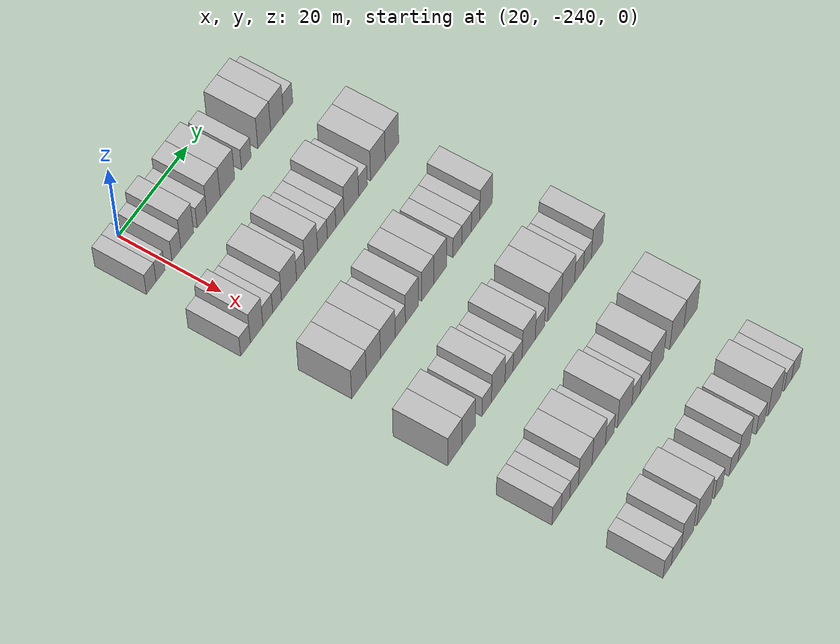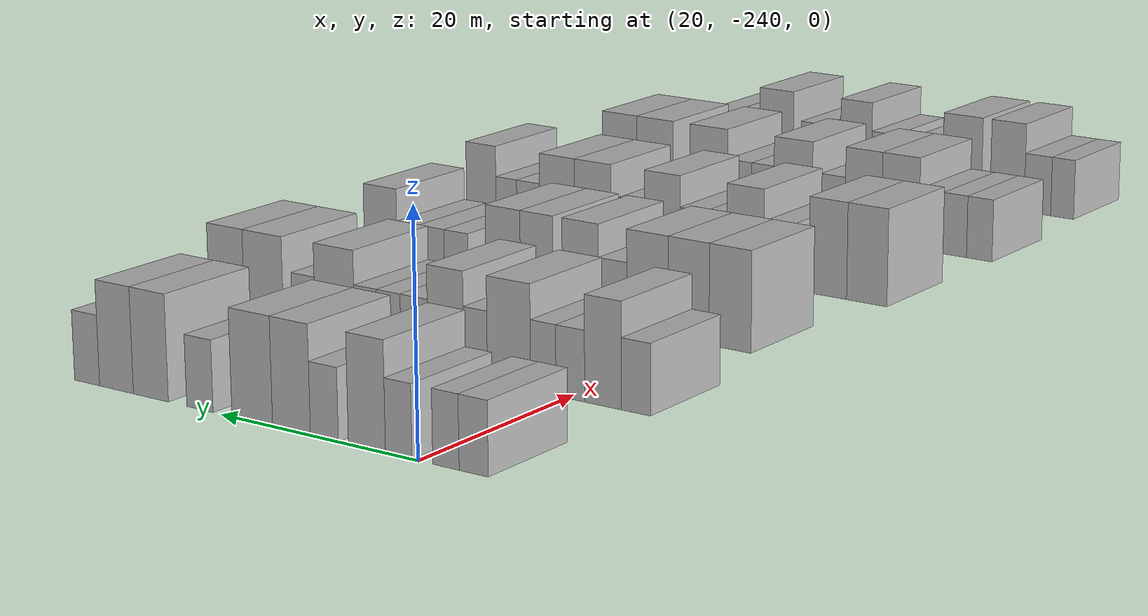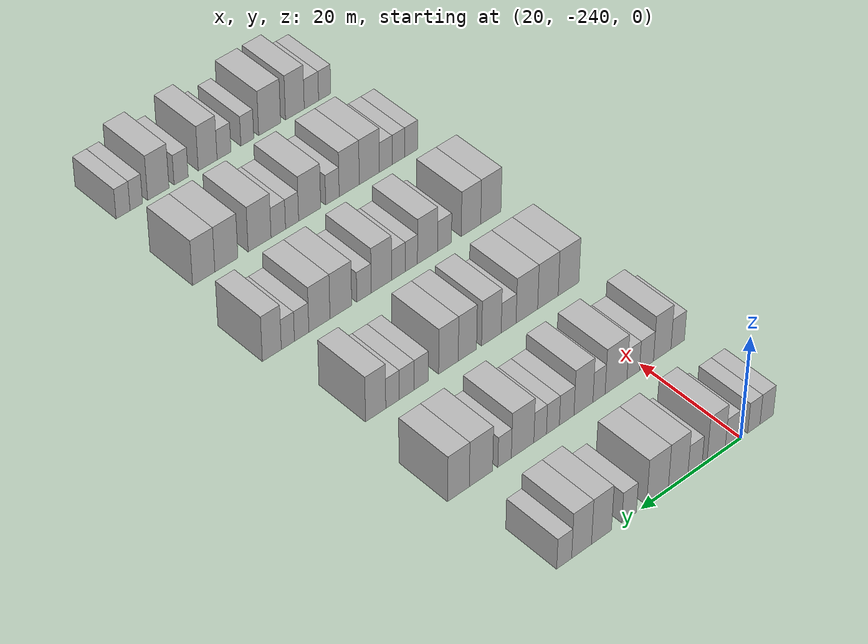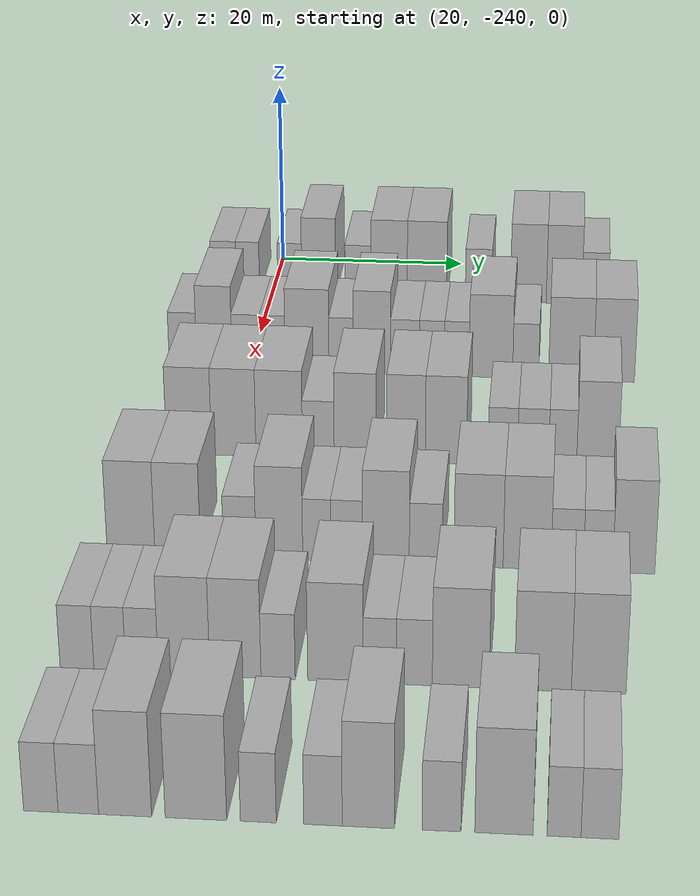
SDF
<sdf version="1.6">
 <world name="default">
  <model name="building_25">
   <static>1</static>
   <pose>25.0000 -245.2868 0 0.000000 0.000000 0.000000</pose>
   <link name="link">
    <pose>0 0 3.00 0 0 0</pose>
    <collision name="collision"><geometry><box><size>10.0000 2.7521 6.0000</size></box></geometry></collision>
    <visual name="visual">
     <cast_shadows>0</cast_shadows>
     <geometry><box><size>10.0000 2.7521 6.0000</size></box></geometry>
     <material>
      <script>
       <uri>model://HANNAS_wall/materials/scripts</uri>
       <uri>model://HANNAS_wall/materials/textures</uri>
       <name>vrc/HANNAS_wall</name>
      </script>
     </material>
    </visual>
   </link>
  </model>
  <model name="building_26">
   <static>1</static>
   <pose>25.0000 -242.6461 0 0.000000 0.000000 0.000000</pose>
   <link name="link">
    <pose>0 0 3.00 0 0 0</pose>
    <collision name="collision"><geometry><box><size>10.0000 2.5293 6.0000</size></box></geometry></collision>
    <visual name="visual">
     <cast_shadows>0</cast_shadows>
     <geometry><box><size>10.0000 2.5293 6.0000</size></box></geometry>
     <material>
      <script>
       <uri>model://HANNAS_wall/materials/scripts</uri>
       <uri>model://HANNAS_wall/materials/textures</uri>
       <name>vrc/HANNAS_wall</name>
      </script>
     </material>
    </visual>
   </link>
  </model>
  <model name="building_27">
   <static>1</static>
   <pose>25.0000 -238.0825 0 0.000000 0.000000 0.000000</pose>
   <link name="link">
    <pose>0 0 3.00 0 0 0</pose>
    <collision name="collision"><geometry><box><size>10.0000 2.5979 6.0000</size></box></geometry></collision>
    <visual name="visual">
     <cast_shadows>0</cast_shadows>
     <geometry><box><size>10.0000 2.5979 6.0000</size></box></geometry>
     <material>
      <script>
       <uri>model://HANNAS_wall/materials/scripts</uri>
       <uri>model://HANNAS_wall/materials/textures</uri>
       <name>vrc/HANNAS_wall</name>
      </script>
     </material>
    </visual>
   </link>
  </model>
  <model name="building_28">
   <static>1</static>
   <pose>25.0000 -234.9409 0 0.000000 0.000000 0.000000</pose>
   <link name="link">
    <pose>0 0 4.50 0 0 0</pose>
    <collision name="collision"><geometry><box><size>10.0000 3.6854 9.0000</size></box></geometry></collision>
    <visual name="visual">
     <cast_shadows>0</cast_shadows>
     <geometry><box><size>10.0000 3.6854 9.0000</size></box></geometry>
     <material>
      <script>
       <uri>model://HANNAS_wall/materials/scripts</uri>
       <uri>model://HANNAS_wall/materials/textures</uri>
       <name>vrc/HANNAS_wall</name>
      </script>
     </material>
    </visual>
   </link>
  </model>
  <model name="building_29">
   <static>1</static>
   <pose>25.0000 -230.6805 0 0.000000 0.000000 0.000000</pose>
   <link name="link">
    <pose>0 0 3.00 0 0 0</pose>
    <collision name="collision"><geometry><box><size>10.0000 2.8354 6.0000</size></box></geometry></collision>
    <visual name="visual">
     <cast_shadows>0</cast_shadows>
     <geometry><box><size>10.0000 2.8354 6.0000</size></box></geometry>
     <material>
      <script>
       <uri>model://HANNAS_wall/materials/scripts</uri>
       <uri>model://HANNAS_wall/materials/textures</uri>
       <name>vrc/HANNAS_wall</name>
      </script>
     </material>
    </visual>
   </link>
  </model>
  <model name="building_30">
   <static>1</static>
   <pose>25.0000 -227.3149 0 0.000000 0.000000 0.000000</pose>
   <link name="link">
    <pose>0 0 4.50 0 0 0</pose>
    <collision name="collision"><geometry><box><size>10.0000 3.8957 9.0000</size></box></geometry></collision>
    <visual name="visual">
     <cast_shadows>0</cast_shadows>
     <geometry><box><size>10.0000 3.8957 9.0000</size></box></geometry>
     <material>
      <script>
       <uri>model://HANNAS_wall/materials/scripts</uri>
       <uri>model://HANNAS_wall/materials/textures</uri>
       <name>vrc/HANNAS_wall</name>
      </script>
     </material>
    </visual>
   </link>
  </model>
  <model name="building_31">
   <static>1</static>
   <pose>25.0000 -223.2357 0 0.000000 0.000000 0.000000</pose>
   <link name="link">
    <pose>0 0 4.50 0 0 0</pose>
    <collision name="collision"><geometry><box><size>10.0000 4.2628 9.0000</size></box></geometry></collision>
    <visual name="visual">
     <cast_shadows>0</cast_shadows>
     <geometry><box><size>10.0000 4.2628 9.0000</size></box></geometry>
     <material>
      <script>
       <uri>model://HANNAS_wall/materials/scripts</uri>
       <uri>model://HANNAS_wall/materials/textures</uri>
       <name>vrc/HANNAS_wall</name>
      </script>
     </material>
    </visual>
   </link>
  </model>
  <model name="building_32">
   <static>1</static>
   <pose>25.0000 -217.6826 0 0.000000 0.000000 0.000000</pose>
   <link name="link">
    <pose>0 0 3.00 0 0 0</pose>
    <collision name="collision"><geometry><box><size>10.0000 2.8433 6.0000</size></box></geometry></collision>
    <visual name="visual">
     <cast_shadows>0</cast_shadows>
     <geometry><box><size>10.0000 2.8433 6.0000</size></box></geometry>
     <material>
      <script>
       <uri>model://HANNAS_wall/materials/scripts</uri>
       <uri>model://HANNAS_wall/materials/textures</uri>
       <name>vrc/HANNAS_wall</name>
      </script>
     </material>
    </visual>
   </link>
  </model>
  <model name="building_33">
   <static>1</static>
   <pose>25.0000 -212.3376 0 0.000000 0.000000 0.000000</pose>
   <link name="link">
    <pose>0 0 4.50 0 0 0</pose>
    <collision name="collision"><geometry><box><size>10.0000 3.8468 9.0000</size></box></geometry></collision>
    <visual name="visual">
     <cast_shadows>0</cast_shadows>
     <geometry><box><size>10.0000 3.8468 9.0000</size></box></geometry>
     <material>
      <script>
       <uri>model://HANNAS_wall/materials/scripts</uri>
       <uri>model://HANNAS_wall/materials/textures</uri>
       <name>vrc/HANNAS_wall</name>
      </script>
     </material>
    </visual>
   </link>
  </model>
  <model name="building_34">
   <static>1</static>
   <pose>25.0000 -208.5184 0 0.000000 0.000000 0.000000</pose>
   <link name="link">
    <pose>0 0 4.50 0 0 0</pose>
    <collision name="collision"><geometry><box><size>10.0000 3.7915 9.0000</size></box></geometry></collision>
    <visual name="visual">
     <cast_shadows>0</cast_shadows>
     <geometry><box><size>10.0000 3.7915 9.0000</size></box></geometry>
     <material>
      <script>
       <uri>model://HANNAS_wall/materials/scripts</uri>
       <uri>model://HANNAS_wall/materials/textures</uri>
       <name>vrc/HANNAS_wall</name>
      </script>
     </material>
    </visual>
   </link>
  </model>
  <model name="building_35">
   <static>1</static>
   <pose>25.0000 -205.2065 0 0.000000 0.000000 0.000000</pose>
   <link name="link">
    <pose>0 0 3.00 0 0 0</pose>
    <collision name="collision"><geometry><box><size>10.0000 2.8323 6.0000</size></box></geometry></collision>
    <visual name="visual">
     <cast_shadows>0</cast_shadows>
     <geometry><box><size>10.0000 2.8323 6.0000</size></box></geometry>
     <material>
      <script>
       <uri>model://HANNAS_wall/materials/scripts</uri>
       <uri>model://HANNAS_wall/materials/textures</uri>
       <name>vrc/HANNAS_wall</name>
      </script>
     </material>
    </visual>
   </link>
  </model>
  <model name="building_193">
   <static>1</static>
   <pose>44.0000 -246.7879 0 0.000000 0.000000 0.000000</pose>
   <link name="link">
    <pose>0 0 3.00 0 0 0</pose>
    <collision name="collision"><geometry><box><size>10.0000 2.8056 6.0000</size></box></geometry></collision>
    <visual name="visual">
     <cast_shadows>0</cast_shadows>
     <geometry><box><size>10.0000 2.8056 6.0000</size></box></geometry>
     <material>
      <script>
       <uri>model://HANNAS_wall/materials/scripts</uri>
       <uri>model://HANNAS_wall/materials/textures</uri>
       <name>vrc/HANNAS_wall</name>
      </script>
     </material>
    </visual>
   </link>
  </model>
  <model name="building_194">
   <static>1</static>
   <pose>44.0000 -243.5809 0 0.000000 0.000000 0.000000</pose>
   <link name="link">
    <pose>0 0 4.50 0 0 0</pose>
    <collision name="collision"><geometry><box><size>10.0000 3.6084 9.0000</size></box></geometry></collision>
    <visual name="visual">
     <cast_shadows>0</cast_shadows>
     <geometry><box><size>10.0000 3.6084 9.0000</size></box></geometry>
     <material>
      <script>
       <uri>model://HANNAS_wall/materials/scripts</uri>
       <uri>model://HANNAS_wall/materials/textures</uri>
       <name>vrc/HANNAS_wall</name>
      </script>
     </material>
    </visual>
   </link>
  </model>
  <model name="building_195">
   <static>1</static>
   <pose>44.0000 -240.3448 0 0.000000 0.000000 0.000000</pose>
   <link name="link">
    <pose>0 0 3.00 0 0 0</pose>
    <collision name="collision"><geometry><box><size>10.0000 2.8638 6.0000</size></box></geometry></collision>
    <visual name="visual">
     <cast_shadows>0</cast_shadows>
     <geometry><box><size>10.0000 2.8638 6.0000</size></box></geometry>
     <material>
      <script>
       <uri>model://HANNAS_wall/materials/scripts</uri>
       <uri>model://HANNAS_wall/materials/textures</uri>
       <name>vrc/HANNAS_wall</name>
      </script>
     </material>
    </visual>
   </link>
  </model>
  <model name="building_196">
   <static>1</static>
   <pose>44.0000 -237.6353 0 0.000000 0.000000 0.000000</pose>
   <link name="link">
    <pose>0 0 3.00 0 0 0</pose>
    <collision name="collision"><geometry><box><size>10.0000 2.5553 6.0000</size></box></geometry></collision>
    <visual name="visual">
     <cast_shadows>0</cast_shadows>
     <geometry><box><size>10.0000 2.5553 6.0000</size></box></geometry>
     <material>
      <script>
       <uri>model://HANNAS_wall/materials/scripts</uri>
       <uri>model://HANNAS_wall/materials/textures</uri>
       <name>vrc/HANNAS_wall</name>
      </script>
     </material>
    </visual>
   </link>
  </model>
  <model name="building_197">
   <static>1</static>
   <pose>44.0000 -234.1452 0 0.000000 0.000000 0.000000</pose>
   <link name="link">
    <pose>0 0 4.50 0 0 0</pose>
    <collision name="collision"><geometry><box><size>10.0000 4.4249 9.0000</size></box></geometry></collision>
    <visual name="visual">
     <cast_shadows>0</cast_shadows>
     <geometry><box><size>10.0000 4.4249 9.0000</size></box></geometry>
     <material>
      <script>
       <uri>model://HANNAS_wall/materials/scripts</uri>
       <uri>model://HANNAS_wall/materials/textures</uri>
       <name>vrc/HANNAS_wall</name>
      </script>
     </material>
    </visual>
   </link>
  </model>
  <model name="building_198">
   <static>1</static>
   <pose>44.0000 -230.7107 0 0.000000 0.000000 0.000000</pose>
   <link name="link">
    <pose>0 0 3.00 0 0 0</pose>
    <collision name="collision"><geometry><box><size>10.0000 2.4440 6.0000</size></box></geometry></collision>
    <visual name="visual">
     <cast_shadows>0</cast_shadows>
     <geometry><box><size>10.0000 2.4440 6.0000</size></box></geometry>
     <material>
      <script>
       <uri>model://HANNAS_wall/materials/scripts</uri>
       <uri>model://HANNAS_wall/materials/textures</uri>
       <name>vrc/HANNAS_wall</name>
      </script>
     </material>
    </visual>
   </link>
  </model>
  <model name="building_199">
   <static>1</static>
   <pose>44.0000 -227.5991 0 0.000000 0.000000 0.000000</pose>
   <link name="link">
    <pose>0 0 4.50 0 0 0</pose>
    <collision name="collision"><geometry><box><size>10.0000 3.7792 9.0000</size></box></geometry></collision>
    <visual name="visual">
     <cast_shadows>0</cast_shadows>
     <geometry><box><size>10.0000 3.7792 9.0000</size></box></geometry>
     <material>
      <script>
       <uri>model://HANNAS_wall/materials/scripts</uri>
       <uri>model://HANNAS_wall/materials/textures</uri>
       <name>vrc/HANNAS_wall</name>
      </script>
     </material>
    </visual>
   </link>
  </model>
  <model name="building_200">
   <static>1</static>
   <pose>44.0000 -224.2652 0 0.000000 0.000000 0.000000</pose>
   <link name="link">
    <pose>0 0 3.00 0 0 0</pose>
    <collision name="collision"><geometry><box><size>10.0000 2.8885 6.0000</size></box></geometry></collision>
    <visual name="visual">
     <cast_shadows>0</cast_shadows>
     <geometry><box><size>10.0000 2.8885 6.0000</size></box></geometry>
     <material>
      <script>
       <uri>model://HANNAS_wall/materials/scripts</uri>
       <uri>model://HANNAS_wall/materials/textures</uri>
       <name>vrc/HANNAS_wall</name>
      </script>
     </material>
    </visual>
   </link>
  </model>
  <model name="building_201">
   <static>1</static>
   <pose>44.0000 -221.5485 0 0.000000 0.000000 0.000000</pose>
   <link name="link">
    <pose>0 0 3.00 0 0 0</pose>
    <collision name="collision"><geometry><box><size>10.0000 2.5451 6.0000</size></box></geometry></collision>
    <visual name="visual">
     <cast_shadows>0</cast_shadows>
     <geometry><box><size>10.0000 2.5451 6.0000</size></box></geometry>
     <material>
      <script>
       <uri>model://HANNAS_wall/materials/scripts</uri>
       <uri>model://HANNAS_wall/materials/textures</uri>
       <name>vrc/HANNAS_wall</name>
      </script>
     </material>
    </visual>
   </link>
  </model>
  <model name="building_202">
   <static>1</static>
   <pose>44.0000 -219.0431 0 0.000000 0.000000 0.000000</pose>
   <link name="link">
    <pose>0 0 3.00 0 0 0</pose>
    <collision name="collision"><geometry><box><size>10.0000 2.4657 6.0000</size></box></geometry></collision>
    <visual name="visual">
     <cast_shadows>0</cast_shadows>
     <geometry><box><size>10.0000 2.4657 6.0000</size></box></geometry>
     <material>
      <script>
       <uri>model://HANNAS_wall/materials/scripts</uri>
       <uri>model://HANNAS_wall/materials/textures</uri>
       <name>vrc/HANNAS_wall</name>
      </script>
     </material>
    </visual>
   </link>
  </model>
  <model name="building_203">
   <static>1</static>
   <pose>44.0000 -215.6217 0 0.000000 0.000000 0.000000</pose>
   <link name="link">
    <pose>0 0 4.50 0 0 0</pose>
    <collision name="collision"><geometry><box><size>10.0000 4.3771 9.0000</size></box></geometry></collision>
    <visual name="visual">
     <cast_shadows>0</cast_shadows>
     <geometry><box><size>10.0000 4.3771 9.0000</size></box></geometry>
     <material>
      <script>
       <uri>model://HANNAS_wall/materials/scripts</uri>
       <uri>model://HANNAS_wall/materials/textures</uri>
       <name>vrc/HANNAS_wall</name>
      </script>
     </material>
    </visual>
   </link>
  </model>
  <model name="building_204">
   <static>1</static>
   <pose>44.0000 -212.1338 0 0.000000 0.000000 0.000000</pose>
   <link name="link">
    <pose>0 0 3.00 0 0 0</pose>
    <collision name="collision"><geometry><box><size>10.0000 2.5986 6.0000</size></box></geometry></collision>
    <visual name="visual">
     <cast_shadows>0</cast_shadows>
     <geometry><box><size>10.0000 2.5986 6.0000</size></box></geometry>
     <material>
      <script>
       <uri>model://HANNAS_wall/materials/scripts</uri>
       <uri>model://HANNAS_wall/materials/textures</uri>
       <name>vrc/HANNAS_wall</name>
      </script>
     </material>
    </visual>
   </link>
  </model>
  <model name="building_205">
   <static>1</static>
   <pose>44.0000 -207.6003 0 0.000000 0.000000 0.000000</pose>
   <link name="link">
    <pose>0 0 4.50 0 0 0</pose>
    <collision name="collision"><geometry><box><size>10.0000 4.4684 9.0000</size></box></geometry></collision>
    <visual name="visual">
     <cast_shadows>0</cast_shadows>
     <geometry><box><size>10.0000 4.4684 9.0000</size></box></geometry>
     <material>
      <script>
       <uri>model://HANNAS_wall/materials/scripts</uri>
       <uri>model://HANNAS_wall/materials/textures</uri>
       <name>vrc/HANNAS_wall</name>
      </script>
     </material>
    </visual>
   </link>
  </model>
  <model name="building_206">
   <static>1</static>
   <pose>44.0000 -203.3108 0 0.000000 0.000000 0.000000</pose>
   <link name="link">
    <pose>0 0 4.50 0 0 0</pose>
    <collision name="collision"><geometry><box><size>10.0000 4.1105 9.0000</size></box></geometry></collision>
    <visual name="visual">
     <cast_shadows>0</cast_shadows>
     <geometry><box><size>10.0000 4.1105 9.0000</size></box></geometry>
     <material>
      <script>
       <uri>model://HANNAS_wall/materials/scripts</uri>
       <uri>model://HANNAS_wall/materials/textures</uri>
       <name>vrc/HANNAS_wall</name>
      </script>
     </material>
    </visual>
   </link>
  </model>
  <model name="building_354">
   <static>1</static>
   <pose>63.0000 -243.2544 0 0.000000 0.000000 0.000000</pose>
   <link name="link">
    <pose>0 0 4.50 0 0 0</pose>
    <collision name="collision"><geometry><box><size>10.0000 4.2719 9.0000</size></box></geometry></collision>
    <visual name="visual">
     <cast_shadows>0</cast_shadows>
     <geometry><box><size>10.0000 4.2719 9.0000</size></box></geometry>
     <material>
      <script>
       <uri>model://HANNAS_wall/materials/scripts</uri>
       <uri>model://HANNAS_wall/materials/textures</uri>
       <name>vrc/HANNAS_wall</name>
      </script>
     </material>
    </visual>
   </link>
  </model>
  <model name="building_355">
   <static>1</static>
   <pose>63.0000 -239.0143 0 0.000000 0.000000 0.000000</pose>
   <link name="link">
    <pose>0 0 4.50 0 0 0</pose>
    <collision name="collision"><geometry><box><size>10.0000 4.2083 9.0000</size></box></geometry></collision>
    <visual name="visual">
     <cast_shadows>0</cast_shadows>
     <geometry><box><size>10.0000 4.2083 9.0000</size></box></geometry>
     <material>
      <script>
       <uri>model://HANNAS_wall/materials/scripts</uri>
       <uri>model://HANNAS_wall/materials/textures</uri>
       <name>vrc/HANNAS_wall</name>
      </script>
     </material>
    </visual>
   </link>
  </model>
  <model name="building_356">
   <static>1</static>
   <pose>63.0000 -234.7186 0 0.000000 0.000000 0.000000</pose>
   <link name="link">
    <pose>0 0 4.50 0 0 0</pose>
    <collision name="collision"><geometry><box><size>10.0000 4.3831 9.0000</size></box></geometry></collision>
    <visual name="visual">
     <cast_shadows>0</cast_shadows>
     <geometry><box><size>10.0000 4.3831 9.0000</size></box></geometry>
     <material>
      <script>
       <uri>model://HANNAS_wall/materials/scripts</uri>
       <uri>model://HANNAS_wall/materials/textures</uri>
       <name>vrc/HANNAS_wall</name>
      </script>
     </material>
    </visual>
   </link>
  </model>
  <model name="building_357">
   <static>1</static>
   <pose>63.0000 -231.0304 0 0.000000 0.000000 0.000000</pose>
   <link name="link">
    <pose>0 0 3.00 0 0 0</pose>
    <collision name="collision"><geometry><box><size>10.0000 2.9932 6.0000</size></box></geometry></collision>
    <visual name="visual">
     <cast_shadows>0</cast_shadows>
     <geometry><box><size>10.0000 2.9932 6.0000</size></box></geometry>
     <material>
      <script>
       <uri>model://HANNAS_wall/materials/scripts</uri>
       <uri>model://HANNAS_wall/materials/textures</uri>
       <name>vrc/HANNAS_wall</name>
      </script>
     </material>
    </visual>
   </link>
  </model>
  <model name="building_358">
   <static>1</static>
   <pose>63.0000 -227.5729 0 0.000000 0.000000 0.000000</pose>
   <link name="link">
    <pose>0 0 4.50 0 0 0</pose>
    <collision name="collision"><geometry><box><size>10.0000 3.9219 9.0000</size></box></geometry></collision>
    <visual name="visual">
     <cast_shadows>0</cast_shadows>
     <geometry><box><size>10.0000 3.9219 9.0000</size></box></geometry>
     <material>
      <script>
       <uri>model://HANNAS_wall/materials/scripts</uri>
       <uri>model://HANNAS_wall/materials/textures</uri>
       <name>vrc/HANNAS_wall</name>
      </script>
     </material>
    </visual>
   </link>
  </model>
  <model name="building_359">
   <static>1</static>
   <pose>63.0000 -222.8032 0 0.000000 0.000000 0.000000</pose>
   <link name="link">
    <pose>0 0 4.50 0 0 0</pose>
    <collision name="collision"><geometry><box><size>10.0000 3.6174 9.0000</size></box></geometry></collision>
    <visual name="visual">
     <cast_shadows>0</cast_shadows>
     <geometry><box><size>10.0000 3.6174 9.0000</size></box></geometry>
     <material>
      <script>
       <uri>model://HANNAS_wall/materials/scripts</uri>
       <uri>model://HANNAS_wall/materials/textures</uri>
       <name>vrc/HANNAS_wall</name>
      </script>
     </material>
    </visual>
   </link>
  </model>
  <model name="building_360">
   <static>1</static>
   <pose>63.0000 -219.0661 0 0.000000 0.000000 0.000000</pose>
   <link name="link">
    <pose>0 0 4.50 0 0 0</pose>
    <collision name="collision"><geometry><box><size>10.0000 3.8568 9.0000</size></box></geometry></collision>
    <visual name="visual">
     <cast_shadows>0</cast_shadows>
     <geometry><box><size>10.0000 3.8568 9.0000</size></box></geometry>
     <material>
      <script>
       <uri>model://HANNAS_wall/materials/scripts</uri>
       <uri>model://HANNAS_wall/materials/textures</uri>
       <name>vrc/HANNAS_wall</name>
      </script>
     </material>
    </visual>
   </link>
  </model>
  <model name="building_361">
   <static>1</static>
   <pose>63.0000 -213.7649 0 0.000000 0.000000 0.000000</pose>
   <link name="link">
    <pose>0 0 3.00 0 0 0</pose>
    <collision name="collision"><geometry><box><size>10.0000 2.7457 6.0000</size></box></geometry></collision>
    <visual name="visual">
     <cast_shadows>0</cast_shadows>
     <geometry><box><size>10.0000 2.7457 6.0000</size></box></geometry>
     <material>
      <script>
       <uri>model://HANNAS_wall/materials/scripts</uri>
       <uri>model://HANNAS_wall/materials/textures</uri>
       <name>vrc/HANNAS_wall</name>
      </script>
     </material>
    </visual>
   </link>
  </model>
  <model name="building_362">
   <static>1</static>
   <pose>63.0000 -210.9479 0 0.000000 0.000000 0.000000</pose>
   <link name="link">
    <pose>0 0 3.00 0 0 0</pose>
    <collision name="collision"><geometry><box><size>10.0000 2.8883 6.0000</size></box></geometry></collision>
    <visual name="visual">
     <cast_shadows>0</cast_shadows>
     <geometry><box><size>10.0000 2.8883 6.0000</size></box></geometry>
     <material>
      <script>
       <uri>model://HANNAS_wall/materials/scripts</uri>
       <uri>model://HANNAS_wall/materials/textures</uri>
       <name>vrc/HANNAS_wall</name>
      </script>
     </material>
    </visual>
   </link>
  </model>
  <model name="building_363">
   <static>1</static>
   <pose>63.0000 -208.2048 0 0.000000 0.000000 0.000000</pose>
   <link name="link">
    <pose>0 0 3.00 0 0 0</pose>
    <collision name="collision"><geometry><box><size>10.0000 2.5977 6.0000</size></box></geometry></collision>
    <visual name="visual">
     <cast_shadows>0</cast_shadows>
     <geometry><box><size>10.0000 2.5977 6.0000</size></box></geometry>
     <material>
      <script>
       <uri>model://HANNAS_wall/materials/scripts</uri>
       <uri>model://HANNAS_wall/materials/textures</uri>
       <name>vrc/HANNAS_wall</name>
      </script>
     </material>
    </visual>
   </link>
  </model>
  <model name="building_364">
   <static>1</static>
   <pose>63.0000 -204.9696 0 0.000000 0.000000 0.000000</pose>
   <link name="link">
    <pose>0 0 4.50 0 0 0</pose>
    <collision name="collision"><geometry><box><size>10.0000 3.8727 9.0000</size></box></geometry></collision>
    <visual name="visual">
     <cast_shadows>0</cast_shadows>
     <geometry><box><size>10.0000 3.8727 9.0000</size></box></geometry>
     <material>
      <script>
       <uri>model://HANNAS_wall/materials/scripts</uri>
       <uri>model://HANNAS_wall/materials/textures</uri>
       <name>vrc/HANNAS_wall</name>
      </script>
     </material>
    </visual>
   </link>
  </model>
  <model name="building_522">
   <static>1</static>
   <pose>82.0000 -245.4409 0 0.000000 0.000000 0.000000</pose>
   <link name="link">
    <pose>0 0 4.50 0 0 0</pose>
    <collision name="collision"><geometry><box><size>10.0000 4.1989 9.0000</size></box></geometry></collision>
    <visual name="visual">
     <cast_shadows>0</cast_shadows>
     <geometry><box><size>10.0000 4.1989 9.0000</size></box></geometry>
     <material>
      <script>
       <uri>model://HANNAS_wall/materials/scripts</uri>
       <uri>model://HANNAS_wall/materials/textures</uri>
       <name>vrc/HANNAS_wall</name>
      </script>
     </material>
    </visual>
   </link>
  </model>
  <model name="building_523">
   <static>1</static>
   <pose>82.0000 -241.3343 0 0.000000 0.000000 0.000000</pose>
   <link name="link">
    <pose>0 0 4.50 0 0 0</pose>
    <collision name="collision"><geometry><box><size>10.0000 4.0142 9.0000</size></box></geometry></collision>
    <visual name="visual">
     <cast_shadows>0</cast_shadows>
     <geometry><box><size>10.0000 4.0142 9.0000</size></box></geometry>
     <material>
      <script>
       <uri>model://HANNAS_wall/materials/scripts</uri>
       <uri>model://HANNAS_wall/materials/textures</uri>
       <name>vrc/HANNAS_wall</name>
      </script>
     </material>
    </visual>
   </link>
  </model>
  <model name="building_524">
   <static>1</static>
   <pose>82.0000 -235.9052 0 0.000000 0.000000 0.000000</pose>
   <link name="link">
    <pose>0 0 3.00 0 0 0</pose>
    <collision name="collision"><geometry><box><size>10.0000 2.8440 6.0000</size></box></geometry></collision>
    <visual name="visual">
     <cast_shadows>0</cast_shadows>
     <geometry><box><size>10.0000 2.8440 6.0000</size></box></geometry>
     <material>
      <script>
       <uri>model://HANNAS_wall/materials/scripts</uri>
       <uri>model://HANNAS_wall/materials/textures</uri>
       <name>vrc/HANNAS_wall</name>
      </script>
     </material>
    </visual>
   </link>
  </model>
  <model name="building_525">
   <static>1</static>
   <pose>82.0000 -232.4451 0 0.000000 0.000000 0.000000</pose>
   <link name="link">
    <pose>0 0 4.50 0 0 0</pose>
    <collision name="collision"><geometry><box><size>10.0000 4.0762 9.0000</size></box></geometry></collision>
    <visual name="visual">
     <cast_shadows>0</cast_shadows>
     <geometry><box><size>10.0000 4.0762 9.0000</size></box></geometry>
     <material>
      <script>
       <uri>model://HANNAS_wall/materials/scripts</uri>
       <uri>model://HANNAS_wall/materials/textures</uri>
       <name>vrc/HANNAS_wall</name>
      </script>
     </material>
    </visual>
   </link>
  </model>
  <model name="building_526">
   <static>1</static>
   <pose>82.0000 -229.1876 0 0.000000 0.000000 0.000000</pose>
   <link name="link">
    <pose>0 0 3.00 0 0 0</pose>
    <collision name="collision"><geometry><box><size>10.0000 2.4388 6.0000</size></box></geometry></collision>
    <visual name="visual">
     <cast_shadows>0</cast_shadows>
     <geometry><box><size>10.0000 2.4388 6.0000</size></box></geometry>
     <material>
      <script>
       <uri>model://HANNAS_wall/materials/scripts</uri>
       <uri>model://HANNAS_wall/materials/textures</uri>
       <name>vrc/HANNAS_wall</name>
      </script>
     </material>
    </visual>
   </link>
  </model>
  <model name="building_527">
   <static>1</static>
   <pose>82.0000 -226.5876 0 0.000000 0.000000 0.000000</pose>
   <link name="link">
    <pose>0 0 3.00 0 0 0</pose>
    <collision name="collision"><geometry><box><size>10.0000 2.7611 6.0000</size></box></geometry></collision>
    <visual name="visual">
     <cast_shadows>0</cast_shadows>
     <geometry><box><size>10.0000 2.7611 6.0000</size></box></geometry>
     <material>
      <script>
       <uri>model://HANNAS_wall/materials/scripts</uri>
       <uri>model://HANNAS_wall/materials/textures</uri>
       <name>vrc/HANNAS_wall</name>
      </script>
     </material>
    </visual>
   </link>
  </model>
  <model name="building_528">
   <static>1</static>
   <pose>82.0000 -223.1853 0 0.000000 0.000000 0.000000</pose>
   <link name="link">
    <pose>0 0 4.50 0 0 0</pose>
    <collision name="collision"><geometry><box><size>10.0000 4.0435 9.0000</size></box></geometry></collision>
    <visual name="visual">
     <cast_shadows>0</cast_shadows>
     <geometry><box><size>10.0000 4.0435 9.0000</size></box></geometry>
     <material>
      <script>
       <uri>model://HANNAS_wall/materials/scripts</uri>
       <uri>model://HANNAS_wall/materials/textures</uri>
       <name>vrc/HANNAS_wall</name>
      </script>
     </material>
    </visual>
   </link>
  </model>
  <model name="building_529">
   <static>1</static>
   <pose>82.0000 -219.7388 0 0.000000 0.000000 0.000000</pose>
   <link name="link">
    <pose>0 0 3.00 0 0 0</pose>
    <collision name="collision"><geometry><box><size>10.0000 2.8496 6.0000</size></box></geometry></collision>
    <visual name="visual">
     <cast_shadows>0</cast_shadows>
     <geometry><box><size>10.0000 2.8496 6.0000</size></box></geometry>
     <material>
      <script>
       <uri>model://HANNAS_wall/materials/scripts</uri>
       <uri>model://HANNAS_wall/materials/textures</uri>
       <name>vrc/HANNAS_wall</name>
      </script>
     </material>
    </visual>
   </link>
  </model>
  <model name="building_530">
   <static>1</static>
   <pose>82.0000 -215.1945 0 0.000000 0.000000 0.000000</pose>
   <link name="link">
    <pose>0 0 4.50 0 0 0</pose>
    <collision name="collision"><geometry><box><size>10.0000 4.2390 9.0000</size></box></geometry></collision>
    <visual name="visual">
     <cast_shadows>0</cast_shadows>
     <geometry><box><size>10.0000 4.2390 9.0000</size></box></geometry>
     <material>
      <script>
       <uri>model://HANNAS_wall/materials/scripts</uri>
       <uri>model://HANNAS_wall/materials/textures</uri>
       <name>vrc/HANNAS_wall</name>
      </script>
     </material>
    </visual>
   </link>
  </model>
  <model name="building_531">
   <static>1</static>
   <pose>82.0000 -211.0233 0 0.000000 0.000000 0.000000</pose>
   <link name="link">
    <pose>0 0 4.50 0 0 0</pose>
    <collision name="collision"><geometry><box><size>10.0000 4.1035 9.0000</size></box></geometry></collision>
    <visual name="visual">
     <cast_shadows>0</cast_shadows>
     <geometry><box><size>10.0000 4.1035 9.0000</size></box></geometry>
     <material>
      <script>
       <uri>model://HANNAS_wall/materials/scripts</uri>
       <uri>model://HANNAS_wall/materials/textures</uri>
       <name>vrc/HANNAS_wall</name>
      </script>
     </material>
    </visual>
   </link>
  </model>
  <model name="building_532">
   <static>1</static>
   <pose>82.0000 -207.5847 0 0.000000 0.000000 0.000000</pose>
   <link name="link">
    <pose>0 0 3.00 0 0 0</pose>
    <collision name="collision"><geometry><box><size>10.0000 2.7737 6.0000</size></box></geometry></collision>
    <visual name="visual">
     <cast_shadows>0</cast_shadows>
     <geometry><box><size>10.0000 2.7737 6.0000</size></box></geometry>
     <material>
      <script>
       <uri>model://HANNAS_wall/materials/scripts</uri>
       <uri>model://HANNAS_wall/materials/textures</uri>
       <name>vrc/HANNAS_wall</name>
      </script>
     </material>
    </visual>
   </link>
  </model>
  <model name="building_533">
   <static>1</static>
   <pose>82.0000 -204.9425 0 0.000000 0.000000 0.000000</pose>
   <link name="link">
    <pose>0 0 3.00 0 0 0</pose>
    <collision name="collision"><geometry><box><size>10.0000 2.5107 6.0000</size></box></geometry></collision>
    <visual name="visual">
     <cast_shadows>0</cast_shadows>
     <geometry><box><size>10.0000 2.5107 6.0000</size></box></geometry>
     <material>
      <script>
       <uri>model://HANNAS_wall/materials/scripts</uri>
       <uri>model://HANNAS_wall/materials/textures</uri>
       <name>vrc/HANNAS_wall</name>
      </script>
     </material>
    </visual>
   </link>
  </model>
  <model name="building_534">
   <static>1</static>
   <pose>82.0000 -201.8833 0 0.000000 0.000000 0.000000</pose>
   <link name="link">
    <pose>0 0 4.50 0 0 0</pose>
    <collision name="collision"><geometry><box><size>10.0000 3.6076 9.0000</size></box></geometry></collision>
    <visual name="visual">
     <cast_shadows>0</cast_shadows>
     <geometry><box><size>10.0000 3.6076 9.0000</size></box></geometry>
     <material>
      <script>
       <uri>model://HANNAS_wall/materials/scripts</uri>
       <uri>model://HANNAS_wall/materials/textures</uri>
       <name>vrc/HANNAS_wall</name>
      </script>
     </material>
    </visual>
   </link>
  </model>
  <model name="building_698">
   <static>1</static>
   <pose>101.0000 -246.4581 0 0.000000 0.000000 0.000000</pose>
   <link name="link">
    <pose>0 0 3.00 0 0 0</pose>
    <collision name="collision"><geometry><box><size>10.0000 2.7346 6.0000</size></box></geometry></collision>
    <visual name="visual">
     <cast_shadows>0</cast_shadows>
     <geometry><box><size>10.0000 2.7346 6.0000</size></box></geometry>
     <material>
      <script>
       <uri>model://HANNAS_wall/materials/scripts</uri>
       <uri>model://HANNAS_wall/materials/textures</uri>
       <name>vrc/HANNAS_wall</name>
      </script>
     </material>
    </visual>
   </link>
  </model>
  <model name="building_699">
   <static>1</static>
   <pose>101.0000 -243.8033 0 0.000000 0.000000 0.000000</pose>
   <link name="link">
    <pose>0 0 3.00 0 0 0</pose>
    <collision name="collision"><geometry><box><size>10.0000 2.5750 6.0000</size></box></geometry></collision>
    <visual name="visual">
     <cast_shadows>0</cast_shadows>
     <geometry><box><size>10.0000 2.5750 6.0000</size></box></geometry>
     <material>
      <script>
       <uri>model://HANNAS_wall/materials/scripts</uri>
       <uri>model://HANNAS_wall/materials/textures</uri>
       <name>vrc/HANNAS_wall</name>
      </script>
     </material>
    </visual>
   </link>
  </model>
  <model name="building_700">
   <static>1</static>
   <pose>101.0000 -241.2031 0 0.000000 0.000000 0.000000</pose>
   <link name="link">
    <pose>0 0 3.00 0 0 0</pose>
    <collision name="collision"><geometry><box><size>10.0000 2.6253 6.0000</size></box></geometry></collision>
    <visual name="visual">
     <cast_shadows>0</cast_shadows>
     <geometry><box><size>10.0000 2.6253 6.0000</size></box></geometry>
     <material>
      <script>
       <uri>model://HANNAS_wall/materials/scripts</uri>
       <uri>model://HANNAS_wall/materials/textures</uri>
       <name>vrc/HANNAS_wall</name>
      </script>
     </material>
    </visual>
   </link>
  </model>
  <model name="building_701">
   <static>1</static>
   <pose>101.0000 -237.8207 0 0.000000 0.000000 0.000000</pose>
   <link name="link">
    <pose>0 0 4.50 0 0 0</pose>
    <collision name="collision"><geometry><box><size>10.0000 4.1396 9.0000</size></box></geometry></collision>
    <visual name="visual">
     <cast_shadows>0</cast_shadows>
     <geometry><box><size>10.0000 4.1396 9.0000</size></box></geometry>
     <material>
      <script>
       <uri>model://HANNAS_wall/materials/scripts</uri>
       <uri>model://HANNAS_wall/materials/textures</uri>
       <name>vrc/HANNAS_wall</name>
      </script>
     </material>
    </visual>
   </link>
  </model>
  <model name="building_702">
   <static>1</static>
   <pose>101.0000 -233.7039 0 0.000000 0.000000 0.000000</pose>
   <link name="link">
    <pose>0 0 4.50 0 0 0</pose>
    <collision name="collision"><geometry><box><size>10.0000 4.0941 9.0000</size></box></geometry></collision>
    <visual name="visual">
     <cast_shadows>0</cast_shadows>
     <geometry><box><size>10.0000 4.0941 9.0000</size></box></geometry>
     <material>
      <script>
       <uri>model://HANNAS_wall/materials/scripts</uri>
       <uri>model://HANNAS_wall/materials/textures</uri>
       <name>vrc/HANNAS_wall</name>
      </script>
     </material>
    </visual>
   </link>
  </model>
  <model name="building_703">
   <static>1</static>
   <pose>101.0000 -230.2874 0 0.000000 0.000000 0.000000</pose>
   <link name="link">
    <pose>0 0 3.00 0 0 0</pose>
    <collision name="collision"><geometry><box><size>10.0000 2.7388 6.0000</size></box></geometry></collision>
    <visual name="visual">
     <cast_shadows>0</cast_shadows>
     <geometry><box><size>10.0000 2.7388 6.0000</size></box></geometry>
     <material>
      <script>
       <uri>model://HANNAS_wall/materials/scripts</uri>
       <uri>model://HANNAS_wall/materials/textures</uri>
       <name>vrc/HANNAS_wall</name>
      </script>
     </material>
    </visual>
   </link>
  </model>
  <model name="building_704">
   <static>1</static>
   <pose>101.0000 -225.7036 0 0.000000 0.000000 0.000000</pose>
   <link name="link">
    <pose>0 0 4.50 0 0 0</pose>
    <collision name="collision"><geometry><box><size>10.0000 4.4289 9.0000</size></box></geometry></collision>
    <visual name="visual">
     <cast_shadows>0</cast_shadows>
     <geometry><box><size>10.0000 4.4289 9.0000</size></box></geometry>
     <material>
      <script>
       <uri>model://HANNAS_wall/materials/scripts</uri>
       <uri>model://HANNAS_wall/materials/textures</uri>
       <name>vrc/HANNAS_wall</name>
      </script>
     </material>
    </visual>
   </link>
  </model>
  <model name="building_705">
   <static>1</static>
   <pose>101.0000 -222.1856 0 0.000000 0.000000 0.000000</pose>
   <link name="link">
    <pose>0 0 3.00 0 0 0</pose>
    <collision name="collision"><geometry><box><size>10.0000 2.6070 6.0000</size></box></geometry></collision>
    <visual name="visual">
     <cast_shadows>0</cast_shadows>
     <geometry><box><size>10.0000 2.6070 6.0000</size></box></geometry>
     <material>
      <script>
       <uri>model://HANNAS_wall/materials/scripts</uri>
       <uri>model://HANNAS_wall/materials/textures</uri>
       <name>vrc/HANNAS_wall</name>
      </script>
     </material>
    </visual>
   </link>
  </model>
  <model name="building_706">
   <static>1</static>
   <pose>101.0000 -219.4481 0 0.000000 0.000000 0.000000</pose>
   <link name="link">
    <pose>0 0 3.00 0 0 0</pose>
    <collision name="collision"><geometry><box><size>10.0000 2.8681 6.0000</size></box></geometry></collision>
    <visual name="visual">
     <cast_shadows>0</cast_shadows>
     <geometry><box><size>10.0000 2.8681 6.0000</size></box></geometry>
     <material>
      <script>
       <uri>model://HANNAS_wall/materials/scripts</uri>
       <uri>model://HANNAS_wall/materials/textures</uri>
       <name>vrc/HANNAS_wall</name>
      </script>
     </material>
    </visual>
   </link>
  </model>
  <model name="building_707">
   <static>1</static>
   <pose>101.0000 -215.7645 0 0.000000 0.000000 0.000000</pose>
   <link name="link">
    <pose>0 0 4.50 0 0 0</pose>
    <collision name="collision"><geometry><box><size>10.0000 4.4991 9.0000</size></box></geometry></collision>
    <visual name="visual">
     <cast_shadows>0</cast_shadows>
     <geometry><box><size>10.0000 4.4991 9.0000</size></box></geometry>
     <material>
      <script>
       <uri>model://HANNAS_wall/materials/scripts</uri>
       <uri>model://HANNAS_wall/materials/textures</uri>
       <name>vrc/HANNAS_wall</name>
      </script>
     </material>
    </visual>
   </link>
  </model>
  <model name="building_708">
   <static>1</static>
   <pose>101.0000 -209.2805 0 0.000000 0.000000 0.000000</pose>
   <link name="link">
    <pose>0 0 4.50 0 0 0</pose>
    <collision name="collision"><geometry><box><size>10.0000 4.4689 9.0000</size></box></geometry></collision>
    <visual name="visual">
     <cast_shadows>0</cast_shadows>
     <geometry><box><size>10.0000 4.4689 9.0000</size></box></geometry>
     <material>
      <script>
       <uri>model://HANNAS_wall/materials/scripts</uri>
       <uri>model://HANNAS_wall/materials/textures</uri>
       <name>vrc/HANNAS_wall</name>
      </script>
     </material>
    </visual>
   </link>
  </model>
  <model name="building_709">
   <static>1</static>
   <pose>101.0000 -204.8990 0 0.000000 0.000000 0.000000</pose>
   <link name="link">
    <pose>0 0 4.50 0 0 0</pose>
    <collision name="collision"><geometry><box><size>10.0000 4.2941 9.0000</size></box></geometry></collision>
    <visual name="visual">
     <cast_shadows>0</cast_shadows>
     <geometry><box><size>10.0000 4.2941 9.0000</size></box></geometry>
     <material>
      <script>
       <uri>model://HANNAS_wall/materials/scripts</uri>
       <uri>model://HANNAS_wall/materials/textures</uri>
       <name>vrc/HANNAS_wall</name>
      </script>
     </material>
    </visual>
   </link>
  </model>
  <model name="building_867">
   <static>1</static>
   <pose>120.0000 -245.3994 0 0.000000 0.000000 0.000000</pose>
   <link name="link">
    <pose>0 0 3.00 0 0 0</pose>
    <collision name="collision"><geometry><box><size>10.0000 2.5514 6.0000</size></box></geometry></collision>
    <visual name="visual">
     <cast_shadows>0</cast_shadows>
     <geometry><box><size>10.0000 2.5514 6.0000</size></box></geometry>
     <material>
      <script>
       <uri>model://HANNAS_wall/materials/scripts</uri>
       <uri>model://HANNAS_wall/materials/textures</uri>
       <name>vrc/HANNAS_wall</name>
      </script>
     </material>
    </visual>
   </link>
  </model>
  <model name="building_868">
   <static>1</static>
   <pose>120.0000 -242.6338 0 0.000000 0.000000 0.000000</pose>
   <link name="link">
    <pose>0 0 3.00 0 0 0</pose>
    <collision name="collision"><geometry><box><size>10.0000 2.9799 6.0000</size></box></geometry></collision>
    <visual name="visual">
     <cast_shadows>0</cast_shadows>
     <geometry><box><size>10.0000 2.9799 6.0000</size></box></geometry>
     <material>
      <script>
       <uri>model://HANNAS_wall/materials/scripts</uri>
       <uri>model://HANNAS_wall/materials/textures</uri>
       <name>vrc/HANNAS_wall</name>
      </script>
     </material>
    </visual>
   </link>
  </model>
  <model name="building_869">
   <static>1</static>
   <pose>120.0000 -239.2007 0 0.000000 0.000000 0.000000</pose>
   <link name="link">
    <pose>0 0 4.50 0 0 0</pose>
    <collision name="collision"><geometry><box><size>10.0000 3.8864 9.0000</size></box></geometry></collision>
    <visual name="visual">
     <cast_shadows>0</cast_shadows>
     <geometry><box><size>10.0000 3.8864 9.0000</size></box></geometry>
     <material>
      <script>
       <uri>model://HANNAS_wall/materials/scripts</uri>
       <uri>model://HANNAS_wall/materials/textures</uri>
       <name>vrc/HANNAS_wall</name>
      </script>
     </material>
    </visual>
   </link>
  </model>
  <model name="building_870">
   <static>1</static>
   <pose>120.0000 -234.0120 0 0.000000 0.000000 0.000000</pose>
   <link name="link">
    <pose>0 0 4.50 0 0 0</pose>
    <collision name="collision"><geometry><box><size>10.0000 4.4911 9.0000</size></box></geometry></collision>
    <visual name="visual">
     <cast_shadows>0</cast_shadows>
     <geometry><box><size>10.0000 4.4911 9.0000</size></box></geometry>
     <material>
      <script>
       <uri>model://HANNAS_wall/materials/scripts</uri>
       <uri>model://HANNAS_wall/materials/textures</uri>
       <name>vrc/HANNAS_wall</name>
      </script>
     </material>
    </visual>
   </link>
  </model>
  <model name="building_871">
   <static>1</static>
   <pose>120.0000 -229.4592 0 0.000000 0.000000 0.000000</pose>
   <link name="link">
    <pose>0 0 3.00 0 0 0</pose>
    <collision name="collision"><geometry><box><size>10.0000 2.6144 6.0000</size></box></geometry></collision>
    <visual name="visual">
     <cast_shadows>0</cast_shadows>
     <geometry><box><size>10.0000 2.6144 6.0000</size></box></geometry>
     <material>
      <script>
       <uri>model://HANNAS_wall/materials/scripts</uri>
       <uri>model://HANNAS_wall/materials/textures</uri>
       <name>vrc/HANNAS_wall</name>
      </script>
     </material>
    </visual>
   </link>
  </model>
  <model name="building_872">
   <static>1</static>
   <pose>120.0000 -224.7540 0 0.000000 0.000000 0.000000</pose>
   <link name="link">
    <pose>0 0 3.00 0 0 0</pose>
    <collision name="collision"><geometry><box><size>10.0000 2.7961 6.0000</size></box></geometry></collision>
    <visual name="visual">
     <cast_shadows>0</cast_shadows>
     <geometry><box><size>10.0000 2.7961 6.0000</size></box></geometry>
     <material>
      <script>
       <uri>model://HANNAS_wall/materials/scripts</uri>
       <uri>model://HANNAS_wall/materials/textures</uri>
       <name>vrc/HANNAS_wall</name>
      </script>
     </material>
    </visual>
   </link>
  </model>
  <model name="building_873">
   <static>1</static>
   <pose>120.0000 -221.4732 0 0.000000 0.000000 0.000000</pose>
   <link name="link">
    <pose>0 0 4.50 0 0 0</pose>
    <collision name="collision"><geometry><box><size>10.0000 3.7655 9.0000</size></box></geometry></collision>
    <visual name="visual">
     <cast_shadows>0</cast_shadows>
     <geometry><box><size>10.0000 3.7655 9.0000</size></box></geometry>
     <material>
      <script>
       <uri>model://HANNAS_wall/materials/scripts</uri>
       <uri>model://HANNAS_wall/materials/textures</uri>
       <name>vrc/HANNAS_wall</name>
      </script>
     </material>
    </visual>
   </link>
  </model>
  <model name="building_874">
   <static>1</static>
   <pose>120.0000 -216.1932 0 0.000000 0.000000 0.000000</pose>
   <link name="link">
    <pose>0 0 3.00 0 0 0</pose>
    <collision name="collision"><geometry><box><size>10.0000 2.7946 6.0000</size></box></geometry></collision>
    <visual name="visual">
     <cast_shadows>0</cast_shadows>
     <geometry><box><size>10.0000 2.7946 6.0000</size></box></geometry>
     <material>
      <script>
       <uri>model://HANNAS_wall/materials/scripts</uri>
       <uri>model://HANNAS_wall/materials/textures</uri>
       <name>vrc/HANNAS_wall</name>
      </script>
     </material>
    </visual>
   </link>
  </model>
  <model name="building_875">
   <static>1</static>
   <pose>120.0000 -211.7038 0 0.000000 0.000000 0.000000</pose>
   <link name="link">
    <pose>0 0 4.50 0 0 0</pose>
    <collision name="collision"><geometry><box><size>10.0000 4.1843 9.0000</size></box></geometry></collision>
    <visual name="visual">
     <cast_shadows>0</cast_shadows>
     <geometry><box><size>10.0000 4.1843 9.0000</size></box></geometry>
     <material>
      <script>
       <uri>model://HANNAS_wall/materials/scripts</uri>
       <uri>model://HANNAS_wall/materials/textures</uri>
       <name>vrc/HANNAS_wall</name>
      </script>
     </material>
    </visual>
   </link>
  </model>
  <model name="building_876">
   <static>1</static>
   <pose>120.0000 -207.3989 0 0.000000 0.000000 0.000000</pose>
   <link name="link">
    <pose>0 0 3.00 0 0 0</pose>
    <collision name="collision"><geometry><box><size>10.0000 2.4255 6.0000</size></box></geometry></collision>
    <visual name="visual">
     <cast_shadows>0</cast_shadows>
     <geometry><box><size>10.0000 2.4255 6.0000</size></box></geometry>
     <material>
      <script>
       <uri>model://HANNAS_wall/materials/scripts</uri>
       <uri>model://HANNAS_wall/materials/textures</uri>
       <name>vrc/HANNAS_wall</name>
      </script>
     </material>
    </visual>
   </link>
  </model>
  <model name="building_877">
   <static>1</static>
   <pose>120.0000 -204.8308 0 0.000000 0.000000 0.000000</pose>
   <link name="link">
    <pose>0 0 3.00 0 0 0</pose>
    <collision name="collision"><geometry><box><size>10.0000 2.7105 6.0000</size></box></geometry></collision>
    <visual name="visual">
     <cast_shadows>0</cast_shadows>
     <geometry><box><size>10.0000 2.7105 6.0000</size></box></geometry>
     <material>
      <script>
       <uri>model://HANNAS_wall/materials/scripts</uri>
       <uri>model://HANNAS_wall/materials/textures</uri>
       <name>vrc/HANNAS_wall</name>
      </script>
     </material>
    </visual>
   </link>
  </model>
 </world>
</sdf>
